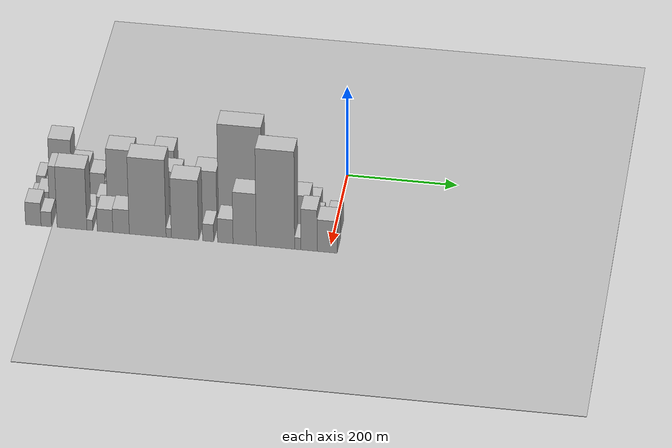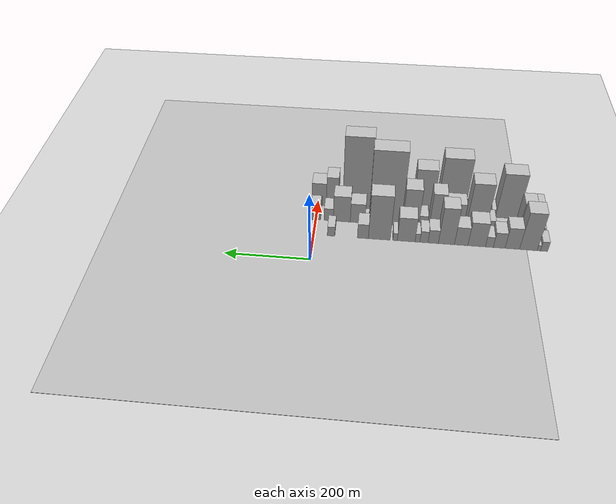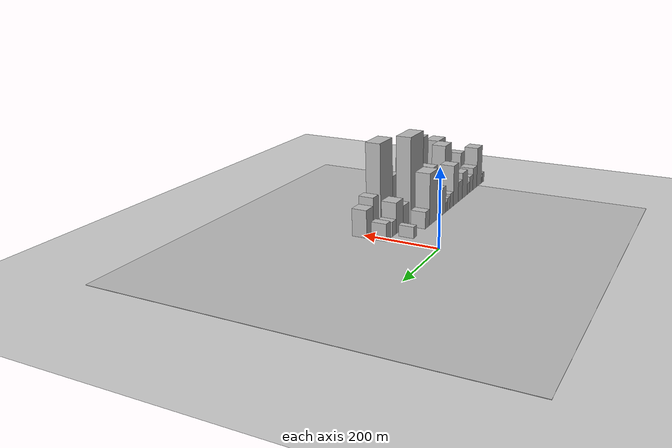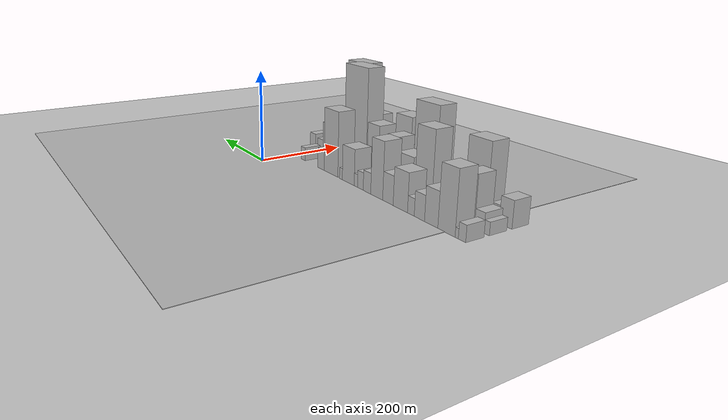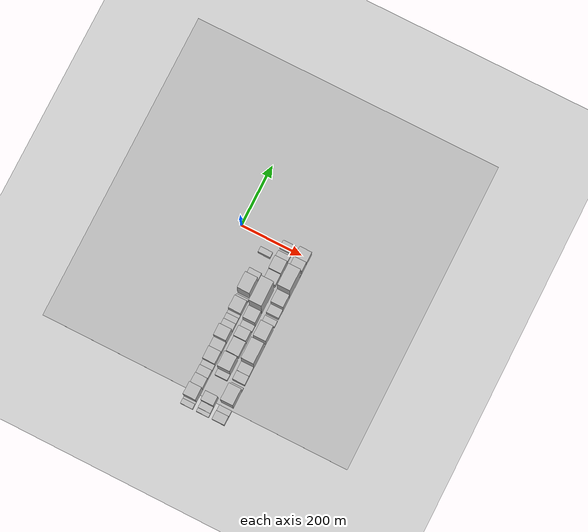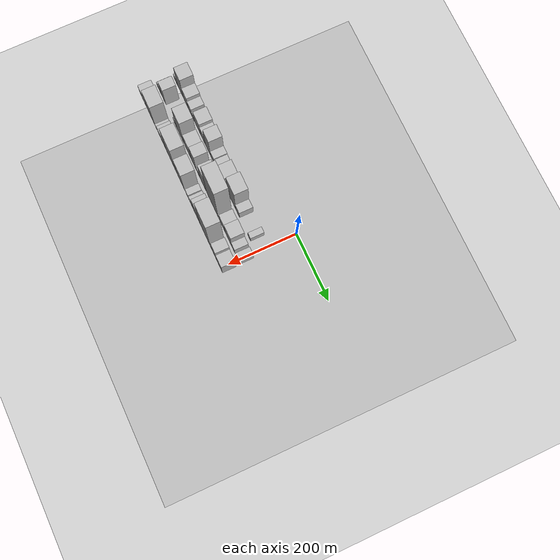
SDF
<sdf version="1.6">
 <world name="default">
  <include><name>ground_plane_1</name><uri>model://HANNAS_ground_plane</uri></include>
  <include>
   <name>ground_plane_2</name>
   <uri>model://HANNAS_ground_plane</uri>
   <pose>100 0 0  0 0 0</pose>
  </include>
  <model name="building_1">
   <static>1</static>
   <pose>100.0000 -539.7203 0 0.000000 0.000000 0.000000</pose>
   <link name="link">
    <pose>0 0 15.00 0 0 0</pose>
    <collision name="collision"><geometry><box><size>40.0000 16.5594 30.0000</size></box></geometry></collision>
    <visual name="visual">
     <cast_shadows>0</cast_shadows>
     <geometry><box><size>40.0000 16.5594 30.0000</size></box></geometry>
     <material>
      <script>
       <uri>model://HANNAS_wall/materials/scripts</uri>
       <uri>model://HANNAS_wall/materials/textures</uri>
       <name>vrc/HANNAS_wall</name>
      </script>
     </material>
    </visual>
   </link>
  </model>
  <model name="building_2">
   <static>1</static>
   <pose>100.0000 -527.6907 0 0.000000 0.000000 0.000000</pose>
   <link name="link">
    <pose>0 0 9.00 0 0 0</pose>
    <collision name="collision"><geometry><box><size>40.0000 7.4998 18.0000</size></box></geometry></collision>
    <visual name="visual">
     <cast_shadows>0</cast_shadows>
     <geometry><box><size>40.0000 7.4998 18.0000</size></box></geometry>
     <material>
      <script>
       <uri>model://HANNAS_wall/materials/scripts</uri>
       <uri>model://HANNAS_wall/materials/textures</uri>
       <name>vrc/HANNAS_wall</name>
      </script>
     </material>
    </visual>
   </link>
  </model>
  <model name="building_3">
   <static>1</static>
   <pose>100.0000 -503.5868 0 0.000000 0.000000 0.000000</pose>
   <link name="link">
    <pose>0 0 58.50 0 0 0</pose>
    <collision name="collision"><geometry><box><size>40.0000 40.7081 117.0000</size></box></geometry></collision>
    <visual name="visual">
     <cast_shadows>0</cast_shadows>
     <geometry><box><size>40.0000 40.7081 117.0000</size></box></geometry>
     <material>
      <script>
       <uri>model://HANNAS_wall/materials/scripts</uri>
       <uri>model://HANNAS_wall/materials/textures</uri>
       <name>vrc/HANNAS_wall</name>
      </script>
     </material>
    </visual>
   </link>
  </model>
  <model name="building_4">
   <static>1</static>
   <pose>100.0000 -466.5340 0 0.000000 0.000000 0.000000</pose>
   <link name="link">
    <pose>0 0 33.00 0 0 0</pose>
    <collision name="collision"><geometry><box><size>40.0000 33.3975 66.0000</size></box></geometry></collision>
    <visual name="visual">
     <cast_shadows>0</cast_shadows>
     <geometry><box><size>40.0000 33.3975 66.0000</size></box></geometry>
     <material>
      <script>
       <uri>model://HANNAS_wall/materials/scripts</uri>
       <uri>model://HANNAS_wall/materials/textures</uri>
       <name>vrc/HANNAS_wall</name>
      </script>
     </material>
    </visual>
   </link>
  </model>
  <model name="building_5">
   <static>1</static>
   <pose>100.0000 -436.3399 0 0.000000 0.000000 0.000000</pose>
   <link name="link">
    <pose>0 0 24.00 0 0 0</pose>
    <collision name="collision"><geometry><box><size>40.0000 26.9907 48.0000</size></box></geometry></collision>
    <visual name="visual">
     <cast_shadows>0</cast_shadows>
     <geometry><box><size>40.0000 26.9907 48.0000</size></box></geometry>
     <material>
      <script>
       <uri>model://HANNAS_wall/materials/scripts</uri>
       <uri>model://HANNAS_wall/materials/textures</uri>
       <name>vrc/HANNAS_wall</name>
      </script>
     </material>
    </visual>
   </link>
  </model>
  <model name="building_6">
   <static>1</static>
   <pose>100.0000 -413.6722 0 0.000000 0.000000 0.000000</pose>
   <link name="link">
    <pose>0 0 16.50 0 0 0</pose>
    <collision name="collision"><geometry><box><size>40.0000 18.3447 33.0000</size></box></geometry></collision>
    <visual name="visual">
     <cast_shadows>0</cast_shadows>
     <geometry><box><size>40.0000 18.3447 33.0000</size></box></geometry>
     <material>
      <script>
       <uri>model://HANNAS_wall/materials/scripts</uri>
       <uri>model://HANNAS_wall/materials/textures</uri>
       <name>vrc/HANNAS_wall</name>
      </script>
     </material>
    </visual>
   </link>
  </model>
  <model name="building_7">
   <static>1</static>
   <pose>100.0000 -384.2251 0 0.000000 0.000000 0.000000</pose>
   <link name="link">
    <pose>0 0 37.50 0 0 0</pose>
    <collision name="collision"><geometry><box><size>40.0000 40.5494 75.0000</size></box></geometry></collision>
    <visual name="visual">
     <cast_shadows>0</cast_shadows>
     <geometry><box><size>40.0000 40.5494 75.0000</size></box></geometry>
     <material>
      <script>
       <uri>model://HANNAS_wall/materials/scripts</uri>
       <uri>model://HANNAS_wall/materials/textures</uri>
       <name>vrc/HANNAS_wall</name>
      </script>
     </material>
    </visual>
   </link>
  </model>
  <model name="building_8">
   <static>1</static>
   <pose>100.0000 -348.3038 0 0.000000 0.000000 0.000000</pose>
   <link name="link">
    <pose>0 0 28.50 0 0 0</pose>
    <collision name="collision"><geometry><box><size>40.0000 31.2933 57.0000</size></box></geometry></collision>
    <visual name="visual">
     <cast_shadows>0</cast_shadows>
     <geometry><box><size>40.0000 31.2933 57.0000</size></box></geometry>
     <material>
      <script>
       <uri>model://HANNAS_wall/materials/scripts</uri>
       <uri>model://HANNAS_wall/materials/textures</uri>
       <name>vrc/HANNAS_wall</name>
      </script>
     </material>
    </visual>
   </link>
  </model>
  <model name="building_9">
   <static>1</static>
   <pose>100.0000 -313.9564 0 0.000000 0.000000 0.000000</pose>
   <link name="link">
    <pose>0 0 57.00 0 0 0</pose>
    <collision name="collision"><geometry><box><size>40.0000 37.4015 114.0000</size></box></geometry></collision>
    <visual name="visual">
     <cast_shadows>0</cast_shadows>
     <geometry><box><size>40.0000 37.4015 114.0000</size></box></geometry>
     <material>
      <script>
       <uri>model://HANNAS_wall/materials/scripts</uri>
       <uri>model://HANNAS_wall/materials/textures</uri>
       <name>vrc/HANNAS_wall</name>
      </script>
     </material>
    </visual>
   </link>
  </model>
  <model name="building_10">
   <static>1</static>
   <pose>100.0000 -283.1105 0 0.000000 0.000000 0.000000</pose>
   <link name="link">
    <pose>0 0 21.00 0 0 0</pose>
    <collision name="collision"><geometry><box><size>40.0000 24.2902 42.0000</size></box></geometry></collision>
    <visual name="visual">
     <cast_shadows>0</cast_shadows>
     <geometry><box><size>40.0000 24.2902 42.0000</size></box></geometry>
     <material>
      <script>
       <uri>model://HANNAS_wall/materials/scripts</uri>
       <uri>model://HANNAS_wall/materials/textures</uri>
       <name>vrc/HANNAS_wall</name>
      </script>
     </material>
    </visual>
   </link>
  </model>
  <model name="building_11">
   <static>1</static>
   <pose>100.0000 -261.4859 0 0.000000 0.000000 0.000000</pose>
   <link name="link">
    <pose>0 0 18.00 0 0 0</pose>
    <collision name="collision"><geometry><box><size>40.0000 18.9591 36.0000</size></box></geometry></collision>
    <visual name="visual">
     <cast_shadows>0</cast_shadows>
     <geometry><box><size>40.0000 18.9591 36.0000</size></box></geometry>
     <material>
      <script>
       <uri>model://HANNAS_wall/materials/scripts</uri>
       <uri>model://HANNAS_wall/materials/textures</uri>
       <name>vrc/HANNAS_wall</name>
      </script>
     </material>
    </visual>
   </link>
  </model>
  <model name="building_12">
   <static>1</static>
   <pose>100.0000 -246.2850 0 0.000000 0.000000 0.000000</pose>
   <link name="link">
    <pose>0 0 13.50 0 0 0</pose>
    <collision name="collision"><geometry><box><size>40.0000 11.4427 27.0000</size></box></geometry></collision>
    <visual name="visual">
     <cast_shadows>0</cast_shadows>
     <geometry><box><size>40.0000 11.4427 27.0000</size></box></geometry>
     <material>
      <script>
       <uri>model://HANNAS_wall/materials/scripts</uri>
       <uri>model://HANNAS_wall/materials/textures</uri>
       <name>vrc/HANNAS_wall</name>
      </script>
     </material>
    </visual>
   </link>
  </model>
  <model name="building_13">
   <static>1</static>
   <pose>100.0000 -219.5942 0 0.000000 0.000000 0.000000</pose>
   <link name="link">
    <pose>0 0 37.50 0 0 0</pose>
    <collision name="collision"><geometry><box><size>40.0000 41.9387 75.0000</size></box></geometry></collision>
    <visual name="visual">
     <cast_shadows>0</cast_shadows>
     <geometry><box><size>40.0000 41.9387 75.0000</size></box></geometry>
     <material>
      <script>
       <uri>model://HANNAS_wall/materials/scripts</uri>
       <uri>model://HANNAS_wall/materials/textures</uri>
       <name>vrc/HANNAS_wall</name>
      </script>
     </material>
    </visual>
   </link>
  </model>
  <model name="building_14">
   <static>1</static>
   <pose>100.0000 -193.3613 0 0.000000 0.000000 0.000000</pose>
   <link name="link">
    <pose>0 0 12.00 0 0 0</pose>
    <collision name="collision"><geometry><box><size>40.0000 10.5271 24.0000</size></box></geometry></collision>
    <visual name="visual">
     <cast_shadows>0</cast_shadows>
     <geometry><box><size>40.0000 10.5271 24.0000</size></box></geometry>
     <material>
      <script>
       <uri>model://HANNAS_wall/materials/scripts</uri>
       <uri>model://HANNAS_wall/materials/textures</uri>
       <name>vrc/HANNAS_wall</name>
      </script>
     </material>
    </visual>
   </link>
  </model>
  <model name="building_15">
   <static>1</static>
   <pose>100.0000 -156.2065 0 0.000000 0.000000 0.000000</pose>
   <link name="link">
    <pose>0 0 69.00 0 0 0</pose>
    <collision name="collision"><geometry><box><size>40.0000 51.7826 138.0000</size></box></geometry></collision>
    <visual name="visual">
     <cast_shadows>0</cast_shadows>
     <geometry><box><size>40.0000 51.7826 138.0000</size></box></geometry>
     <material>
      <script>
       <uri>model://HANNAS_wall/materials/scripts</uri>
       <uri>model://HANNAS_wall/materials/textures</uri>
       <name>vrc/HANNAS_wall</name>
      </script>
     </material>
    </visual>
   </link>
  </model>
  <model name="building_16">
   <static>1</static>
   <pose>100.0000 -117.3530 0 0.000000 0.000000 0.000000</pose>
   <link name="link">
    <pose>0 0 22.50 0 0 0</pose>
    <collision name="collision"><geometry><box><size>40.0000 25.9244 45.0000</size></box></geometry></collision>
    <visual name="visual">
     <cast_shadows>0</cast_shadows>
     <geometry><box><size>40.0000 25.9244 45.0000</size></box></geometry>
     <material>
      <script>
       <uri>model://HANNAS_wall/materials/scripts</uri>
       <uri>model://HANNAS_wall/materials/textures</uri>
       <name>vrc/HANNAS_wall</name>
      </script>
     </material>
    </visual>
   </link>
  </model>
  <model name="building_17">
   <static>1</static>
   <pose>100.0000 -41.7375 0 0.000000 0.000000 0.000000</pose>
   <link name="link">
    <pose>0 0 15.00 0 0 0</pose>
    <collision name="collision"><geometry><box><size>40.0000 17.7689 30.0000</size></box></geometry></collision>
    <visual name="visual">
     <cast_shadows>0</cast_shadows>
     <geometry><box><size>40.0000 17.7689 30.0000</size></box></geometry>
     <material>
      <script>
       <uri>model://HANNAS_wall/materials/scripts</uri>
       <uri>model://HANNAS_wall/materials/textures</uri>
       <name>vrc/HANNAS_wall</name>
      </script>
     </material>
    </visual>
   </link>
  </model>
  <model name="building_35">
   <static>1</static>
   <pose>152.0000 -542.0256 0 0.000000 0.000000 0.000000</pose>
   <link name="link">
    <pose>0 0 12.00 0 0 0</pose>
    <collision name="collision"><geometry><box><size>40.0000 11.9488 24.0000</size></box></geometry></collision>
    <visual name="visual">
     <cast_shadows>0</cast_shadows>
     <geometry><box><size>40.0000 11.9488 24.0000</size></box></geometry>
     <material>
      <script>
       <uri>model://HANNAS_wall/materials/scripts</uri>
       <uri>model://HANNAS_wall/materials/textures</uri>
       <name>vrc/HANNAS_wall</name>
      </script>
     </material>
    </visual>
   </link>
  </model>
  <model name="building_36">
   <static>1</static>
   <pose>152.0000 -525.3995 0 0.000000 0.000000 0.000000</pose>
   <link name="link">
    <pose>0 0 18.00 0 0 0</pose>
    <collision name="collision"><geometry><box><size>40.0000 21.3033 36.0000</size></box></geometry></collision>
    <visual name="visual">
     <cast_shadows>0</cast_shadows>
     <geometry><box><size>40.0000 21.3033 36.0000</size></box></geometry>
     <material>
      <script>
       <uri>model://HANNAS_wall/materials/scripts</uri>
       <uri>model://HANNAS_wall/materials/textures</uri>
       <name>vrc/HANNAS_wall</name>
      </script>
     </material>
    </visual>
   </link>
  </model>
  <model name="building_37">
   <static>1</static>
   <pose>152.0000 -499.8184 0 0.000000 0.000000 0.000000</pose>
   <link name="link">
    <pose>0 0 48.00 0 0 0</pose>
    <collision name="collision"><geometry><box><size>40.0000 29.8588 96.0000</size></box></geometry></collision>
    <visual name="visual">
     <cast_shadows>0</cast_shadows>
     <geometry><box><size>40.0000 29.8588 96.0000</size></box></geometry>
     <material>
      <script>
       <uri>model://HANNAS_wall/materials/scripts</uri>
       <uri>model://HANNAS_wall/materials/textures</uri>
       <name>vrc/HANNAS_wall</name>
      </script>
     </material>
    </visual>
   </link>
  </model>
  <model name="building_38">
   <static>1</static>
   <pose>152.0000 -418.8033 0 0.000000 0.000000 0.000000</pose>
   <link name="link">
    <pose>0 0 18.00 0 0 0</pose>
    <collision name="collision"><geometry><box><size>40.0000 20.0571 36.0000</size></box></geometry></collision>
    <visual name="visual">
     <cast_shadows>0</cast_shadows>
     <geometry><box><size>40.0000 20.0571 36.0000</size></box></geometry>
     <material>
      <script>
       <uri>model://HANNAS_wall/materials/scripts</uri>
       <uri>model://HANNAS_wall/materials/textures</uri>
       <name>vrc/HANNAS_wall</name>
      </script>
     </material>
    </visual>
   </link>
  </model>
  <model name="building_39">
   <static>1</static>
   <pose>152.0000 -384.7673 0 0.000000 0.000000 0.000000</pose>
   <link name="link">
    <pose>0 0 73.50 0 0 0</pose>
    <collision name="collision"><geometry><box><size>40.0000 48.0148 147.0000</size></box></geometry></collision>
    <visual name="visual">
     <cast_shadows>0</cast_shadows>
     <geometry><box><size>40.0000 48.0148 147.0000</size></box></geometry>
     <material>
      <script>
       <uri>model://HANNAS_wall/materials/scripts</uri>
       <uri>model://HANNAS_wall/materials/textures</uri>
       <name>vrc/HANNAS_wall</name>
      </script>
     </material>
    </visual>
   </link>
  </model>
  <model name="building_40">
   <static>1</static>
   <pose>152.0000 -331.0103 0 0.000000 0.000000 0.000000</pose>
   <link name="link">
    <pose>0 0 40.50 0 0 0</pose>
    <collision name="collision"><geometry><box><size>40.0000 47.4994 81.0000</size></box></geometry></collision>
    <visual name="visual">
     <cast_shadows>0</cast_shadows>
     <geometry><box><size>40.0000 47.4994 81.0000</size></box></geometry>
     <material>
      <script>
       <uri>model://HANNAS_wall/materials/scripts</uri>
       <uri>model://HANNAS_wall/materials/textures</uri>
       <name>vrc/HANNAS_wall</name>
      </script>
     </material>
    </visual>
   </link>
  </model>
  <model name="building_41">
   <static>1</static>
   <pose>152.0000 -290.8518 0 0.000000 0.000000 0.000000</pose>
   <link name="link">
    <pose>0 0 54.00 0 0 0</pose>
    <collision name="collision"><geometry><box><size>40.0000 32.8174 108.0000</size></box></geometry></collision>
    <visual name="visual">
     <cast_shadows>0</cast_shadows>
     <geometry><box><size>40.0000 32.8174 108.0000</size></box></geometry>
     <material>
      <script>
       <uri>model://HANNAS_wall/materials/scripts</uri>
       <uri>model://HANNAS_wall/materials/textures</uri>
       <name>vrc/HANNAS_wall</name>
      </script>
     </material>
    </visual>
   </link>
  </model>
  <model name="building_42">
   <static>1</static>
   <pose>152.0000 -259.4082 0 0.000000 0.000000 0.000000</pose>
   <link name="link">
    <pose>0 0 18.00 0 0 0</pose>
    <collision name="collision"><geometry><box><size>40.0000 20.0698 36.0000</size></box></geometry></collision>
    <visual name="visual">
     <cast_shadows>0</cast_shadows>
     <geometry><box><size>40.0000 20.0698 36.0000</size></box></geometry>
     <material>
      <script>
       <uri>model://HANNAS_wall/materials/scripts</uri>
       <uri>model://HANNAS_wall/materials/textures</uri>
       <name>vrc/HANNAS_wall</name>
      </script>
     </material>
    </visual>
   </link>
  </model>
  <model name="building_43">
   <static>1</static>
   <pose>152.0000 -229.8704 0 0.000000 0.000000 0.000000</pose>
   <link name="link">
    <pose>0 0 58.50 0 0 0</pose>
    <collision name="collision"><geometry><box><size>40.0000 39.0057 117.0000</size></box></geometry></collision>
    <visual name="visual">
     <cast_shadows>0</cast_shadows>
     <geometry><box><size>40.0000 39.0057 117.0000</size></box></geometry>
     <material>
      <script>
       <uri>model://HANNAS_wall/materials/scripts</uri>
       <uri>model://HANNAS_wall/materials/textures</uri>
       <name>vrc/HANNAS_wall</name>
      </script>
     </material>
    </visual>
   </link>
  </model>
  <model name="building_44">
   <static>1</static>
   <pose>152.0000 -168.1744 0 0.000000 0.000000 0.000000</pose>
   <link name="link">
    <pose>0 0 112.50 0 0 0</pose>
    <collision name="collision"><geometry><box><size>40.0000 78.3864 225.0000</size></box></geometry></collision>
    <visual name="visual">
     <cast_shadows>0</cast_shadows>
     <geometry><box><size>40.0000 78.3864 225.0000</size></box></geometry>
     <material>
      <script>
       <uri>model://HANNAS_wall/materials/scripts</uri>
       <uri>model://HANNAS_wall/materials/textures</uri>
       <name>vrc/HANNAS_wall</name>
      </script>
     </material>
    </visual>
   </link>
  </model>
  <model name="building_45">
   <static>1</static>
   <pose>152.0000 -102.0199 0 0.000000 0.000000 0.000000</pose>
   <link name="link">
    <pose>0 0 30.00 0 0 0</pose>
    <collision name="collision"><geometry><box><size>40.0000 35.9226 60.0000</size></box></geometry></collision>
    <visual name="visual">
     <cast_shadows>0</cast_shadows>
     <geometry><box><size>40.0000 35.9226 60.0000</size></box></geometry>
     <material>
      <script>
       <uri>model://HANNAS_wall/materials/scripts</uri>
       <uri>model://HANNAS_wall/materials/textures</uri>
       <name>vrc/HANNAS_wall</name>
      </script>
     </material>
    </visual>
   </link>
  </model>
  <model name="building_46">
   <static>1</static>
   <pose>152.0000 -63.4967 0 0.000000 0.000000 0.000000</pose>
   <link name="link">
    <pose>0 0 40.50 0 0 0</pose>
    <collision name="collision"><geometry><box><size>40.0000 41.1237 81.0000</size></box></geometry></collision>
    <visual name="visual">
     <cast_shadows>0</cast_shadows>
     <geometry><box><size>40.0000 41.1237 81.0000</size></box></geometry>
     <material>
      <script>
       <uri>model://HANNAS_wall/materials/scripts</uri>
       <uri>model://HANNAS_wall/materials/textures</uri>
       <name>vrc/HANNAS_wall</name>
      </script>
     </material>
    </visual>
   </link>
  </model>
  <model name="building_47">
   <static>1</static>
   <pose>152.0000 -31.5005 0 0.000000 0.000000 0.000000</pose>
   <link name="link">
    <pose>0 0 19.50 0 0 0</pose>
    <collision name="collision"><geometry><box><size>40.0000 22.8687 39.0000</size></box></geometry></collision>
    <visual name="visual">
     <cast_shadows>0</cast_shadows>
     <geometry><box><size>40.0000 22.8687 39.0000</size></box></geometry>
     <material>
      <script>
       <uri>model://HANNAS_wall/materials/scripts</uri>
       <uri>model://HANNAS_wall/materials/textures</uri>
       <name>vrc/HANNAS_wall</name>
      </script>
     </material>
    </visual>
   </link>
  </model>
  <model name="building_48">
   <static>1</static>
   <pose>152.0000 0.6745 0 0.000000 0.000000 0.000000</pose>
   <link name="link">
    <pose>0 0 22.50 0 0 0</pose>
    <collision name="collision"><geometry><box><size>40.0000 23.4812 45.0000</size></box></geometry></collision>
    <visual name="visual">
     <cast_shadows>0</cast_shadows>
     <geometry><box><size>40.0000 23.4812 45.0000</size></box></geometry>
     <material>
      <script>
       <uri>model://HANNAS_wall/materials/scripts</uri>
       <uri>model://HANNAS_wall/materials/textures</uri>
       <name>vrc/HANNAS_wall</name>
      </script>
     </material>
    </visual>
   </link>
  </model>
  <model name="building_63">
   <static>1</static>
   <pose>204.0000 -533.9544 0 0.000000 0.000000 0.000000</pose>
   <link name="link">
    <pose>0 0 25.50 0 0 0</pose>
    <collision name="collision"><geometry><box><size>40.0000 28.0912 51.0000</size></box></geometry></collision>
    <visual name="visual">
     <cast_shadows>0</cast_shadows>
     <geometry><box><size>40.0000 28.0912 51.0000</size></box></geometry>
     <material>
      <script>
       <uri>model://HANNAS_wall/materials/scripts</uri>
       <uri>model://HANNAS_wall/materials/textures</uri>
       <name>vrc/HANNAS_wall</name>
      </script>
     </material>
    </visual>
   </link>
  </model>
  <model name="building_64">
   <static>1</static>
   <pose>204.0000 -510.3395 0 0.000000 0.000000 0.000000</pose>
   <link name="link">
    <pose>0 0 16.50 0 0 0</pose>
    <collision name="collision"><geometry><box><size>40.0000 19.1387 33.0000</size></box></geometry></collision>
    <visual name="visual">
     <cast_shadows>0</cast_shadows>
     <geometry><box><size>40.0000 19.1387 33.0000</size></box></geometry>
     <material>
      <script>
       <uri>model://HANNAS_wall/materials/scripts</uri>
       <uri>model://HANNAS_wall/materials/textures</uri>
       <name>vrc/HANNAS_wall</name>
      </script>
     </material>
    </visual>
   </link>
  </model>
  <model name="building_65">
   <static>1</static>
   <pose>204.0000 -463.7104 0 0.000000 0.000000 0.000000</pose>
   <link name="link">
    <pose>0 0 69.00 0 0 0</pose>
    <collision name="collision"><geometry><box><size>40.0000 54.1195 138.0000</size></box></geometry></collision>
    <visual name="visual">
     <cast_shadows>0</cast_shadows>
     <geometry><box><size>40.0000 54.1195 138.0000</size></box></geometry>
     <material>
      <script>
       <uri>model://HANNAS_wall/materials/scripts</uri>
       <uri>model://HANNAS_wall/materials/textures</uri>
       <name>vrc/HANNAS_wall</name>
      </script>
     </material>
    </visual>
   </link>
  </model>
  <model name="building_66">
   <static>1</static>
   <pose>204.0000 -431.3526 0 0.000000 0.000000 0.000000</pose>
   <link name="link">
    <pose>0 0 12.00 0 0 0</pose>
    <collision name="collision"><geometry><box><size>40.0000 10.5962 24.0000</size></box></geometry></collision>
    <visual name="visual">
     <cast_shadows>0</cast_shadows>
     <geometry><box><size>40.0000 10.5962 24.0000</size></box></geometry>
     <material>
      <script>
       <uri>model://HANNAS_wall/materials/scripts</uri>
       <uri>model://HANNAS_wall/materials/textures</uri>
       <name>vrc/HANNAS_wall</name>
      </script>
     </material>
    </visual>
   </link>
  </model>
  <model name="building_67">
   <static>1</static>
   <pose>204.0000 -403.9102 0 0.000000 0.000000 0.000000</pose>
   <link name="link">
    <pose>0 0 25.50 0 0 0</pose>
    <collision name="collision"><geometry><box><size>40.0000 28.2884 51.0000</size></box></geometry></collision>
    <visual name="visual">
     <cast_shadows>0</cast_shadows>
     <geometry><box><size>40.0000 28.2884 51.0000</size></box></geometry>
     <material>
      <script>
       <uri>model://HANNAS_wall/materials/scripts</uri>
       <uri>model://HANNAS_wall/materials/textures</uri>
       <name>vrc/HANNAS_wall</name>
      </script>
     </material>
    </visual>
   </link>
  </model>
  <model name="building_68">
   <static>1</static>
   <pose>204.0000 -374.8939 0 0.000000 0.000000 0.000000</pose>
   <link name="link">
    <pose>0 0 27.00 0 0 0</pose>
    <collision name="collision"><geometry><box><size>40.0000 29.7443 54.0000</size></box></geometry></collision>
    <visual name="visual">
     <cast_shadows>0</cast_shadows>
     <geometry><box><size>40.0000 29.7443 54.0000</size></box></geometry>
     <material>
      <script>
       <uri>model://HANNAS_wall/materials/scripts</uri>
       <uri>model://HANNAS_wall/materials/textures</uri>
       <name>vrc/HANNAS_wall</name>
      </script>
     </material>
    </visual>
   </link>
  </model>
  <model name="building_69">
   <static>1</static>
   <pose>204.0000 -326.7676 0 0.000000 0.000000 0.000000</pose>
   <link name="link">
    <pose>0 0 87.00 0 0 0</pose>
    <collision name="collision"><geometry><box><size>40.0000 66.5082 174.0000</size></box></geometry></collision>
    <visual name="visual">
     <cast_shadows>0</cast_shadows>
     <geometry><box><size>40.0000 66.5082 174.0000</size></box></geometry>
     <material>
      <script>
       <uri>model://HANNAS_wall/materials/scripts</uri>
       <uri>model://HANNAS_wall/materials/textures</uri>
       <name>vrc/HANNAS_wall</name>
      </script>
     </material>
    </visual>
   </link>
  </model>
  <model name="building_70">
   <static>1</static>
   <pose>204.0000 -288.8050 0 0.000000 0.000000 0.000000</pose>
   <link name="link">
    <pose>0 0 10.50 0 0 0</pose>
    <collision name="collision"><geometry><box><size>40.0000 9.4171 21.0000</size></box></geometry></collision>
    <visual name="visual">
     <cast_shadows>0</cast_shadows>
     <geometry><box><size>40.0000 9.4171 21.0000</size></box></geometry>
     <material>
      <script>
       <uri>model://HANNAS_wall/materials/scripts</uri>
       <uri>model://HANNAS_wall/materials/textures</uri>
       <name>vrc/HANNAS_wall</name>
      </script>
     </material>
    </visual>
   </link>
  </model>
  <model name="building_71">
   <static>1</static>
   <pose>204.0000 -259.3557 0 0.000000 0.000000 0.000000</pose>
   <link name="link">
    <pose>0 0 67.50 0 0 0</pose>
    <collision name="collision"><geometry><box><size>40.0000 49.4816 135.0000</size></box></geometry></collision>
    <visual name="visual">
     <cast_shadows>0</cast_shadows>
     <geometry><box><size>40.0000 49.4816 135.0000</size></box></geometry>
     <material>
      <script>
       <uri>model://HANNAS_wall/materials/scripts</uri>
       <uri>model://HANNAS_wall/materials/textures</uri>
       <name>vrc/HANNAS_wall</name>
      </script>
     </material>
    </visual>
   </link>
  </model>
  <model name="building_72">
   <static>1</static>
   <pose>204.0000 -217.6466 0 0.000000 0.000000 0.000000</pose>
   <link name="link">
    <pose>0 0 19.50 0 0 0</pose>
    <collision name="collision"><geometry><box><size>40.0000 19.9365 39.0000</size></box></geometry></collision>
    <visual name="visual">
     <cast_shadows>0</cast_shadows>
     <geometry><box><size>40.0000 19.9365 39.0000</size></box></geometry>
     <material>
      <script>
       <uri>model://HANNAS_wall/materials/scripts</uri>
       <uri>model://HANNAS_wall/materials/textures</uri>
       <name>vrc/HANNAS_wall</name>
      </script>
     </material>
    </visual>
   </link>
  </model>
  <model name="building_73">
   <static>1</static>
   <pose>204.0000 -186.7148 0 0.000000 0.000000 0.000000</pose>
   <link name="link">
    <pose>0 0 27.00 0 0 0</pose>
    <collision name="collision"><geometry><box><size>40.0000 27.9272 54.0000</size></box></geometry></collision>
    <visual name="visual">
     <cast_shadows>0</cast_shadows>
     <geometry><box><size>40.0000 27.9272 54.0000</size></box></geometry>
     <material>
      <script>
       <uri>model://HANNAS_wall/materials/scripts</uri>
       <uri>model://HANNAS_wall/materials/textures</uri>
       <name>vrc/HANNAS_wall</name>
      </script>
     </material>
    </visual>
   </link>
  </model>
  <model name="building_74">
   <static>1</static>
   <pose>204.0000 -151.9746 0 0.000000 0.000000 0.000000</pose>
   <link name="link">
    <pose>0 0 58.50 0 0 0</pose>
    <collision name="collision"><geometry><box><size>40.0000 41.5532 117.0000</size></box></geometry></collision>
    <visual name="visual">
     <cast_shadows>0</cast_shadows>
     <geometry><box><size>40.0000 41.5532 117.0000</size></box></geometry>
     <material>
      <script>
       <uri>model://HANNAS_wall/materials/scripts</uri>
       <uri>model://HANNAS_wall/materials/textures</uri>
       <name>vrc/HANNAS_wall</name>
      </script>
     </material>
    </visual>
   </link>
  </model>
  <model name="building_75">
   <static>1</static>
   <pose>204.0000 -96.6365 0 0.000000 0.000000 0.000000</pose>
   <link name="link">
    <pose>0 0 109.50 0 0 0</pose>
    <collision name="collision"><geometry><box><size>40.0000 69.1231 219.0000</size></box></geometry></collision>
    <visual name="visual">
     <cast_shadows>0</cast_shadows>
     <geometry><box><size>40.0000 69.1231 219.0000</size></box></geometry>
     <material>
      <script>
       <uri>model://HANNAS_wall/materials/scripts</uri>
       <uri>model://HANNAS_wall/materials/textures</uri>
       <name>vrc/HANNAS_wall</name>
      </script>
     </material>
    </visual>
   </link>
  </model>
  <model name="building_76">
   <static>1</static>
   <pose>204.0000 -56.5677 0 0.000000 0.000000 0.000000</pose>
   <link name="link">
    <pose>0 0 13.50 0 0 0</pose>
    <collision name="collision"><geometry><box><size>40.0000 11.0143 27.0000</size></box></geometry></collision>
    <visual name="visual">
     <cast_shadows>0</cast_shadows>
     <geometry><box><size>40.0000 11.0143 27.0000</size></box></geometry>
     <material>
      <script>
       <uri>model://HANNAS_wall/materials/scripts</uri>
       <uri>model://HANNAS_wall/materials/textures</uri>
       <name>vrc/HANNAS_wall</name>
      </script>
     </material>
    </visual>
   </link>
  </model>
  <model name="building_77">
   <static>1</static>
   <pose>204.0000 -36.4045 0 0.000000 0.000000 0.000000</pose>
   <link name="link">
    <pose>0 0 46.50 0 0 0</pose>
    <collision name="collision"><geometry><box><size>40.0000 29.3122 93.0000</size></box></geometry></collision>
    <visual name="visual">
     <cast_shadows>0</cast_shadows>
     <geometry><box><size>40.0000 29.3122 93.0000</size></box></geometry>
     <material>
      <script>
       <uri>model://HANNAS_wall/materials/scripts</uri>
       <uri>model://HANNAS_wall/materials/textures</uri>
       <name>vrc/HANNAS_wall</name>
      </script>
     </material>
    </visual>
   </link>
  </model>
  <model name="building_78">
   <static>1</static>
   <pose>204.0000 -3.7217 0 0.000000 0.000000 0.000000</pose>
   <link name="link">
    <pose>0 0 36.00 0 0 0</pose>
    <collision name="collision"><geometry><box><size>40.0000 36.0533 72.0000</size></box></geometry></collision>
    <visual name="visual">
     <cast_shadows>0</cast_shadows>
     <geometry><box><size>40.0000 36.0533 72.0000</size></box></geometry>
     <material>
      <script>
       <uri>model://HANNAS_wall/materials/scripts</uri>
       <uri>model://HANNAS_wall/materials/textures</uri>
       <name>vrc/HANNAS_wall</name>
      </script>
     </material>
    </visual>
   </link>
  </model>
 </world>
</sdf>
